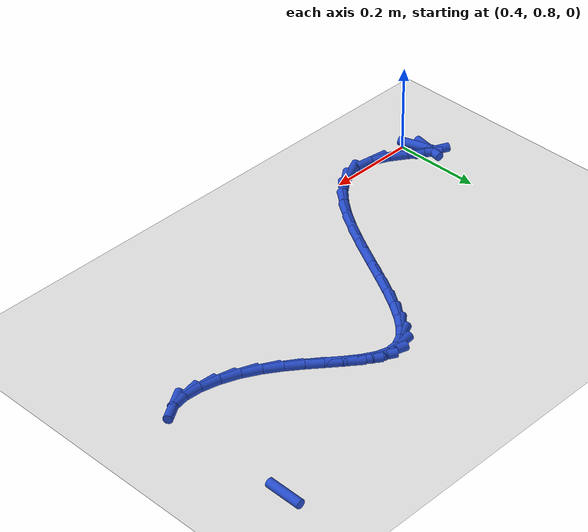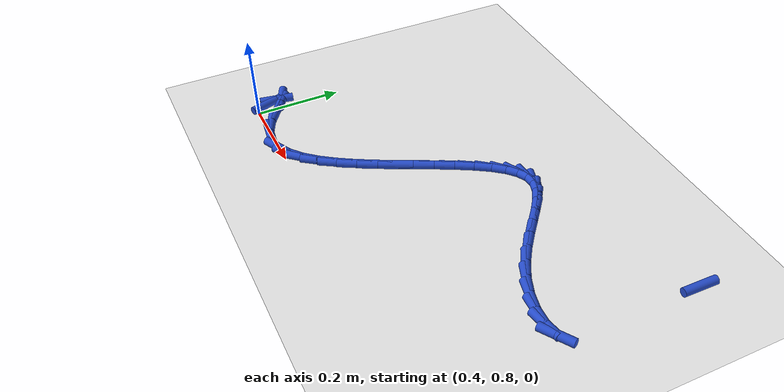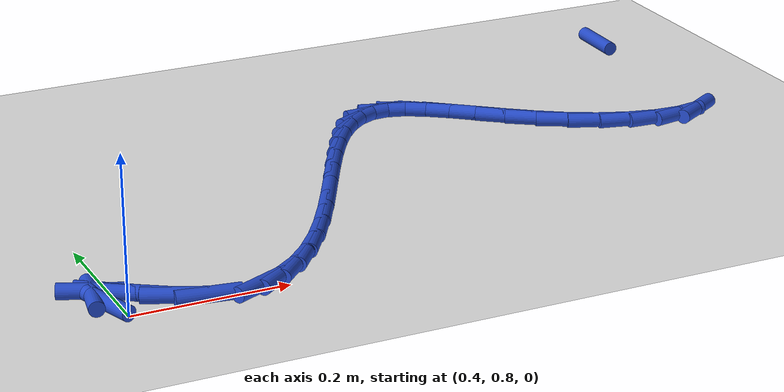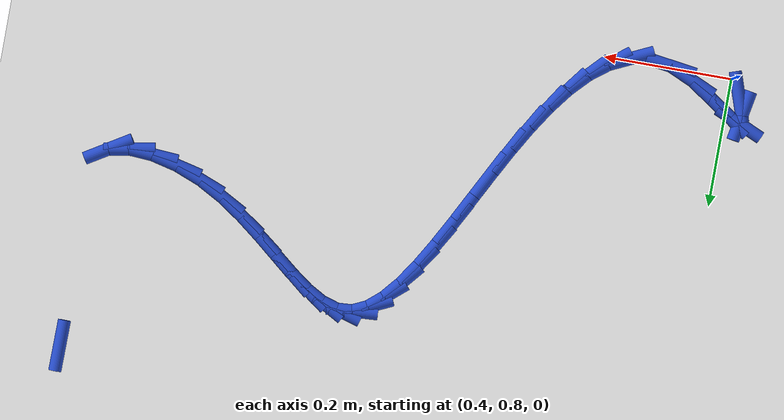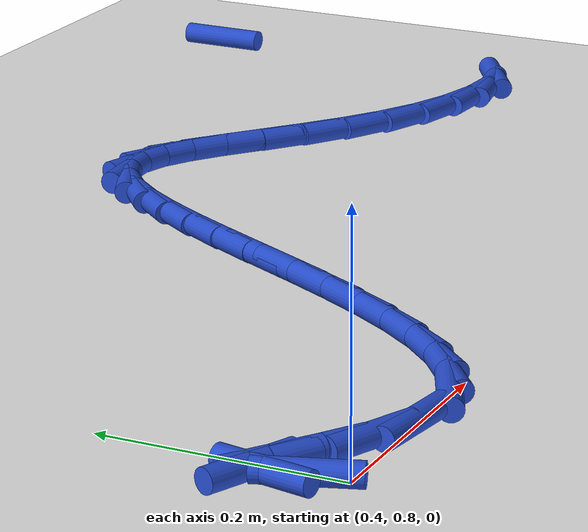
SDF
<sdf version="1.6">
 <world name="default">
  <model name="ground_plane">
   <static>1</static>
   <link name="link">
    <collision name="collision">
     <geometry><plane><normal>0 0 1</normal><size>100 100</size></plane></geometry>
     <surface><friction><ode><mu>100</mu><mu2>50</mu2></ode></friction></surface>
    </collision>
    <visual name="visual">
     <cast_shadows>0</cast_shadows>
     <geometry><plane><normal>0 0 1</normal><size>100 100</size></plane></geometry>
     <material>
      <script><uri>file://media/materials/scripts/gazebo.material</uri><name>Gazebo/WhiteGlow</name></script>
     </material>
    </visual>
   </link>
  </model>
  <model name="line">
   <link name="link_27">
    <pose>0.3840213402727948 0.8250343965628721 0.01 0 1.57 -1.2497416400634016</pose>
    <collision name="collision">
     <geometry><cylinder><radius>0.01</radius><length>0.08</length></cylinder></geometry>
    </collision>
    <visual name="visual">
     <material>
      <script><name>Gazebo/Blue</name><uri>file://media/materials/scripts/gazebo.material</uri></script>
     </material>
     <geometry><cylinder><radius>0.01</radius><length>0.08</length></cylinder></geometry>
    </visual>
   </link>
   <link name="link_28">
    <pose>0.37465007650285614 0.8532135358983607 0.01 0 1.57 1.3891757259824857</pose>
    <collision name="collision">
     <geometry><cylinder><radius>0.01</radius><length>0.08</length></cylinder></geometry>
    </collision>
    <visual name="visual">
     <material>
      <script><name>Gazebo/Blue</name><uri>file://media/materials/scripts/gazebo.material</uri></script>
     </material>
     <geometry><cylinder><radius>0.01</radius><length>0.08</length></cylinder></geometry>
    </visual>
   </link>
   <link name="link_29">
    <pose>0.37684960747522167 0.8651906629637433 0.01 0 1.57 -0.41789258580121025</pose>
    <collision name="collision">
     <geometry><cylinder><radius>0.01</radius><length>0.08</length></cylinder></geometry>
    </collision>
    <visual name="visual">
     <material>
      <script><name>Gazebo/Blue</name><uri>file://media/materials/scripts/gazebo.material</uri></script>
     </material>
     <geometry><cylinder><radius>0.01</radius><length>0.08</length></cylinder></geometry>
    </visual>
   </link>
   <link name="link_30">
    <pose>0.39445333956255335 0.8573737745000473 0.01 0 1.57 -0.6175390298586856</pose>
    <collision name="collision">
     <geometry><cylinder><radius>0.01</radius><length>0.08</length></cylinder></geometry>
    </collision>
    <visual name="visual">
     <material>
      <script><name>Gazebo/Blue</name><uri>file://media/materials/scripts/gazebo.material</uri></script>
     </material>
     <geometry><cylinder><radius>0.01</radius><length>0.08</length></cylinder></geometry>
    </visual>
   </link>
   <link name="link_31">
    <pose>0.4243391507244915 0.8361488632851112 0.01 0 1.57 -0.5842321517447974</pose>
    <collision name="collision">
     <geometry><cylinder><radius>0.01</radius><length>0.08</length></cylinder></geometry>
    </collision>
    <visual name="visual">
     <material>
      <script><name>Gazebo/Blue</name><uri>file://media/materials/scripts/gazebo.material</uri></script>
     </material>
     <geometry><cylinder><radius>0.01</radius><length>0.08</length></cylinder></geometry>
    </visual>
   </link>
   <link name="link_32">
    <pose>0.46024445062688446 0.8124070550397324 0.01 0 1.57 -0.41734542980720046</pose>
    <collision name="collision">
     <geometry><cylinder><radius>0.01</radius><length>0.08</length></cylinder></geometry>
    </collision>
    <visual name="visual">
     <material>
      <script><name>Gazebo/Blue</name><uri>file://media/materials/scripts/gazebo.material</uri></script>
     </material>
     <geometry><cylinder><radius>0.01</radius><length>0.08</length></cylinder></geometry>
    </visual>
   </link>
   <link name="link_33">
    <pose>0.49621227974537485 0.7964591949227914 0.01 0 1.57 -0.14137503615323826</pose>
    <collision name="collision">
     <geometry><cylinder><radius>0.01</radius><length>0.08</length></cylinder></geometry>
    </collision>
    <visual name="visual">
     <material>
      <script><name>Gazebo/Blue</name><uri>file://media/materials/scripts/gazebo.material</uri></script>
     </material>
     <geometry><cylinder><radius>0.01</radius><length>0.08</length></cylinder></geometry>
    </visual>
   </link>
   <link name="link_35">
    <pose>0.5617412339717663 0.7968501234003461 0.01 0 1.57 0.43819260171617636</pose>
    <collision name="collision">
     <geometry><cylinder><radius>0.01</radius><length>0.08</length></cylinder></geometry>
    </collision>
    <visual name="visual">
     <material>
      <script><name>Gazebo/Blue</name><uri>file://media/materials/scripts/gazebo.material</uri></script>
     </material>
     <geometry><cylinder><radius>0.01</radius><length>0.08</length></cylinder></geometry>
    </visual>
   </link>
   <link name="link_36">
    <pose>0.59162326400468 0.8108520783594951 0.01 0 1.57 0.6536071172656929</pose>
    <collision name="collision">
     <geometry><cylinder><radius>0.01</radius><length>0.08</length></cylinder></geometry>
    </collision>
    <visual name="visual">
     <material>
      <script><name>Gazebo/Blue</name><uri>file://media/materials/scripts/gazebo.material</uri></script>
     </material>
     <geometry><cylinder><radius>0.01</radius><length>0.08</length></cylinder></geometry>
    </visual>
   </link>
   <link name="link_37">
    <pose>0.6198238396563265 0.8324512315498346 0.01 0 1.57 0.8090131655517493</pose>
    <collision name="collision">
     <geometry><cylinder><radius>0.01</radius><length>0.08</length></cylinder></geometry>
    </collision>
    <visual name="visual">
     <material>
      <script><name>Gazebo/Blue</name><uri>file://media/materials/scripts/gazebo.material</uri></script>
     </material>
     <geometry><cylinder><radius>0.01</radius><length>0.08</length></cylinder></geometry>
    </visual>
   </link>
   <link name="link_38">
    <pose>0.6465230936808962 0.8604422362845714 0.01 0 1.57 0.9178160358527657</pose>
    <collision name="collision">
     <geometry><cylinder><radius>0.01</radius><length>0.08</length></cylinder></geometry>
    </collision>
    <visual name="visual">
     <material>
      <script><name>Gazebo/Blue</name><uri>file://media/materials/scripts/gazebo.material</uri></script>
     </material>
     <geometry><cylinder><radius>0.01</radius><length>0.08</length></cylinder></geometry>
    </visual>
   </link>
   <link name="link_39">
    <pose>0.6719011588325806 0.8936197458769135 0.01 0 1.57 0.992835950291742</pose>
    <collision name="collision">
     <geometry><cylinder><radius>0.01</radius><length>0.08</length></cylinder></geometry>
    </collision>
    <visual name="visual">
     <material>
      <script><name>Gazebo/Blue</name><uri>file://media/materials/scripts/gazebo.material</uri></script>
     </material>
     <geometry><cylinder><radius>0.01</radius><length>0.08</length></cylinder></geometry>
    </visual>
   </link>
   <link name="link_40">
    <pose>0.69613816786557 0.9307784136400675 0.01 0 1.57 1.0430774463765724</pose>
    <collision name="collision">
     <geometry><cylinder><radius>0.01</radius><length>0.08</length></cylinder></geometry>
    </collision>
    <visual name="visual">
     <material>
      <script><name>Gazebo/Blue</name><uri>file://media/materials/scripts/gazebo.material</uri></script>
     </material>
     <geometry><cylinder><radius>0.01</radius><length>0.08</length></cylinder></geometry>
    </visual>
   </link>
   <link name="link_41">
    <pose>0.7194142535340554 0.9707128928872408 0.01 0 1.57 1.074123053864128</pose>
    <collision name="collision">
     <geometry><cylinder><radius>0.01</radius><length>0.08</length></cylinder></geometry>
    </collision>
    <visual name="visual">
     <material>
      <script><name>Gazebo/Blue</name><uri>file://media/materials/scripts/gazebo.material</uri></script>
     </material>
     <geometry><cylinder><radius>0.01</radius><length>0.08</length></cylinder></geometry>
    </visual>
   </link>
   <link name="link_42">
    <pose>0.7419095485922274 1.0122178369316404 0.01 0 1.57 1.0889823387279105</pose>
    <collision name="collision">
     <geometry><cylinder><radius>0.01</radius><length>0.08</length></cylinder></geometry>
    </collision>
    <visual name="visual">
     <material>
      <script><name>Gazebo/Blue</name><uri>file://media/materials/scripts/gazebo.material</uri></script>
     </material>
     <geometry><cylinder><radius>0.01</radius><length>0.08</length></cylinder></geometry>
    </visual>
   </link>
   <link name="link_43">
    <pose>0.7638041857942766 1.0540878990864733 0.01 0 1.57 1.088621710138873</pose>
    <collision name="collision">
     <geometry><cylinder><radius>0.01</radius><length>0.08</length></cylinder></geometry>
    </collision>
    <visual name="visual">
     <material>
      <script><name>Gazebo/Blue</name><uri>file://media/materials/scripts/gazebo.material</uri></script>
     </material>
     <geometry><cylinder><radius>0.01</radius><length>0.08</length></cylinder></geometry>
    </visual>
   </link>
   <link name="link_44">
    <pose>0.7852782978943937 1.095117732664947 0.01 0 1.57 1.072051214306616</pose>
    <collision name="collision">
     <geometry><cylinder><radius>0.01</radius><length>0.08</length></cylinder></geometry>
    </collision>
    <visual name="visual">
     <material>
      <script><name>Gazebo/Blue</name><uri>file://media/materials/scripts/gazebo.material</uri></script>
     </material>
     <geometry><cylinder><radius>0.01</radius><length>0.08</length></cylinder></geometry>
    </visual>
   </link>
   <link name="link_45">
    <pose>0.8065120176467699 1.1341019909802688 0.01 0 1.57 1.0358795764966506</pose>
    <collision name="collision">
     <geometry><cylinder><radius>0.01</radius><length>0.08</length></cylinder></geometry>
    </collision>
    <visual name="visual">
     <material>
      <script><name>Gazebo/Blue</name><uri>file://media/materials/scripts/gazebo.material</uri></script>
     </material>
     <geometry><cylinder><radius>0.01</radius><length>0.08</length></cylinder></geometry>
    </visual>
   </link>
   <link name="link_46">
    <pose>0.8276854778055959 1.1698353273456457 0.01 0 1.57 0.973074888336738</pose>
    <collision name="collision">
     <geometry><cylinder><radius>0.01</radius><length>0.08</length></cylinder></geometry>
    </collision>
    <visual name="visual">
     <material>
      <script><name>Gazebo/Blue</name><uri>file://media/materials/scripts/gazebo.material</uri></script>
     </material>
     <geometry><cylinder><radius>0.01</radius><length>0.08</length></cylinder></geometry>
    </visual>
   </link>
   <link name="link_47">
    <pose>0.8489788111250622 1.2011123950742846 0.01 0 1.57 0.8703913042534615</pose>
    <collision name="collision">
     <geometry><cylinder><radius>0.01</radius><length>0.08</length></cylinder></geometry>
    </collision>
    <visual name="visual">
     <material>
      <script><name>Gazebo/Blue</name><uri>file://media/materials/scripts/gazebo.material</uri></script>
     </material>
     <geometry><cylinder><radius>0.01</radius><length>0.08</length></cylinder></geometry>
    </visual>
   </link>
   <link name="link_48">
    <pose>0.8705721503593595 1.226727847479393 0.01 0 1.57 0.7041266363398381</pose>
    <collision name="collision">
     <geometry><cylinder><radius>0.01</radius><length>0.08</length></cylinder></geometry>
    </collision>
    <visual name="visual">
     <material>
      <script><name>Gazebo/Blue</name><uri>file://media/materials/scripts/gazebo.material</uri></script>
     </material>
     <geometry><cylinder><radius>0.01</radius><length>0.08</length></cylinder></geometry>
    </visual>
   </link>
   <link name="link_49">
    <pose>0.8926456282626789 1.245476337874178 0.01 0 1.57 0.439048094520214</pose>
    <collision name="collision">
     <geometry><cylinder><radius>0.01</radius><length>0.08</length></cylinder></geometry>
    </collision>
    <visual name="visual">
     <material>
      <script><name>Gazebo/Blue</name><uri>file://media/materials/scripts/gazebo.material</uri></script>
     </material>
     <geometry><cylinder><radius>0.01</radius><length>0.08</length></cylinder></geometry>
    </visual>
   </link>
   <link name="link_50">
    <pose>0.9153793775892112 1.256152519571847 0.01 0 1.57 0.06250082210837357</pose>
    <collision name="collision">
     <geometry><cylinder><radius>0.01</radius><length>0.08</length></cylinder></geometry>
    </collision>
    <visual name="visual">
     <material>
      <script><name>Gazebo/Blue</name><uri>file://media/materials/scripts/gazebo.material</uri></script>
     </material>
     <geometry><cylinder><radius>0.01</radius><length>0.08</length></cylinder></geometry>
    </visual>
   </link>
   <link name="link_51">
    <pose>0.938954292927347 1.2576278927714963 0.01 0 1.57 -0.2907933008298742</pose>
    <collision name="collision">
     <geometry><cylinder><radius>0.01</radius><length>0.08</length></cylinder></geometry>
    </collision>
    <visual name="visual">
     <material>
      <script><name>Gazebo/Blue</name><uri>file://media/materials/scripts/gazebo.material</uri></script>
     </material>
     <geometry><cylinder><radius>0.01</radius><length>0.08</length></cylinder></geometry>
    </visual>
   </link>
   <link name="link_52">
    <pose>0.9635660224999892 1.2502621697616816 0.01 0 1.57 -0.5110485343310961</pose>
    <collision name="collision">
     <geometry><cylinder><radius>0.01</radius><length>0.08</length></cylinder></geometry>
    </collision>
    <visual name="visual">
     <material>
      <script><name>Gazebo/Blue</name><uri>file://media/materials/scripts/gazebo.material</uri></script>
     </material>
     <geometry><cylinder><radius>0.01</radius><length>0.08</length></cylinder></geometry>
    </visual>
   </link>
   <link name="link_53">
    <pose>0.9894235765848806 1.2357629050552201 0.01 0 1.57 -0.6290993567731736</pose>
    <collision name="collision">
     <geometry><cylinder><radius>0.01</radius><length>0.08</length></cylinder></geometry>
    </collision>
    <visual name="visual">
     <material>
      <script><name>Gazebo/Blue</name><uri>file://media/materials/scripts/gazebo.material</uri></script>
     </material>
     <geometry><cylinder><radius>0.01</radius><length>0.08</length></cylinder></geometry>
    </visual>
   </link>
   <link name="link_54">
    <pose>1.0167364481214298 1.2158863396717536 0.01 0 1.57 -0.6813441813651456</pose>
    <collision name="collision">
     <geometry><cylinder><radius>0.01</radius><length>0.08</length></cylinder></geometry>
    </collision>
    <visual name="visual">
     <material>
      <script><name>Gazebo/Blue</name><uri>file://media/materials/scripts/gazebo.material</uri></script>
     </material>
     <geometry><cylinder><radius>0.01</radius><length>0.08</length></cylinder></geometry>
    </visual>
   </link>
   <link name="link_55">
    <pose>1.0457141300490471 1.1923887146309264 0.01 0 1.57 -0.6880532109664231</pose>
    <collision name="collision">
     <geometry><cylinder><radius>0.01</radius><length>0.08</length></cylinder></geometry>
    </collision>
    <visual name="visual">
     <material>
      <script><name>Gazebo/Blue</name><uri>file://media/materials/scripts/gazebo.material</uri></script>
     </material>
     <geometry><cylinder><radius>0.01</radius><length>0.08</length></cylinder></geometry>
    </visual>
   </link>
   <link name="link_56">
    <pose>1.0765661153071422 1.1670262709523809 0.01 0 1.57 -0.6582809554437344</pose>
    <collision name="collision">
     <geometry><cylinder><radius>0.01</radius><length>0.08</length></cylinder></geometry>
    </collision>
    <visual name="visual">
     <material>
      <script><name>Gazebo/Blue</name><uri>file://media/materials/scripts/gazebo.material</uri></script>
     </material>
     <geometry><cylinder><radius>0.01</radius><length>0.08</length></cylinder></geometry>
    </visual>
   </link>
   <link name="link_57">
    <pose>1.1095018968351245 1.1415552496557602 0.01 0 1.57 -0.5946020400388812</pose>
    <collision name="collision">
     <geometry><cylinder><radius>0.01</radius><length>0.08</length></cylinder></geometry>
    </collision>
    <visual name="visual">
     <material>
      <script><name>Gazebo/Blue</name><uri>file://media/materials/scripts/gazebo.material</uri></script>
     </material>
     <geometry><cylinder><radius>0.01</radius><length>0.08</length></cylinder></geometry>
    </visual>
   </link>
   <link name="link_58">
    <pose>1.1447309675724031 1.117731891760707 0.01 0 1.57 -0.49605298139443954</pose>
    <collision name="collision">
     <geometry><cylinder><radius>0.01</radius><length>0.08</length></cylinder></geometry>
    </collision>
    <visual name="visual">
     <material>
      <script><name>Gazebo/Blue</name><uri>file://media/materials/scripts/gazebo.material</uri></script>
     </material>
     <geometry><cylinder><radius>0.01</radius><length>0.08</length></cylinder></geometry>
    </visual>
   </link>
   <link name="link_59">
    <pose>1.182462104114913 1.0973122346371218 0.01 0 1.57 -0.37008091538841814</pose>
    <collision name="collision">
     <geometry><cylinder><radius>0.01</radius><length>0.08</length></cylinder></geometry>
    </collision>
    <visual name="visual">
     <material>
      <script><name>Gazebo/Blue</name><uri>file://media/materials/scripts/gazebo.material</uri></script>
     </material>
     <geometry><cylinder><radius>0.01</radius><length>0.08</length></cylinder></geometry>
    </visual>
   </link>
   <link name="link_60">
    <pose>1.2222647351839147 1.0818705550399248 0.01 0 1.57 -0.23302321920221766</pose>
    <collision name="collision">
     <geometry><cylinder><radius>0.01</radius><length>0.08</length></cylinder></geometry>
    </collision>
    <visual name="visual">
     <material>
      <script><name>Gazebo/Blue</name><uri>file://media/materials/scripts/gazebo.material</uri></script>
     </material>
     <geometry><cylinder><radius>0.01</radius><length>0.08</length></cylinder></geometry>
    </visual>
   </link>
   <link name="link_61">
    <pose>1.2618936461394727 1.0724652436057558 0.01 0 1.57 -0.06500561413143688</pose>
    <collision name="collision">
     <geometry><cylinder><radius>0.01</radius><length>0.08</length></cylinder></geometry>
    </collision>
    <visual name="visual">
     <material>
      <script><name>Gazebo/Blue</name><uri>file://media/materials/scripts/gazebo.material</uri></script>
     </material>
     <geometry><cylinder><radius>0.01</radius><length>0.08</length></cylinder></geometry>
    </visual>
   </link>
   <link name="link_62">
    <pose>1.2987838699629737 1.0700637883636246 0.01 0 1.57 0.17454288929553524</pose>
    <collision name="collision">
     <geometry><cylinder><radius>0.01</radius><length>0.08</length></cylinder></geometry>
    </collision>
    <visual name="visual">
     <material>
      <script><name>Gazebo/Blue</name><uri>file://media/materials/scripts/gazebo.material</uri></script>
     </material>
     <geometry><cylinder><radius>0.01</radius><length>0.08</length></cylinder></geometry>
    </visual>
   </link>
   <link name="link_63">
    <pose>1.3303704396358056 1.0756336773425434 0.01 0 1.57 0.5484654266116746</pose>
    <collision name="collision">
     <geometry><cylinder><radius>0.01</radius><length>0.08</length></cylinder></geometry>
    </collision>
    <visual name="visual">
     <material>
      <script><name>Gazebo/Blue</name><uri>file://media/materials/scripts/gazebo.material</uri></script>
     </material>
     <geometry><cylinder><radius>0.01</radius><length>0.08</length></cylinder></geometry>
    </visual>
   </link>
   <link name="link_72">
    <pose>1.3517056327778103 1.388457103561163 0.01 0 1.57 1.5582900425186175</pose>
    <collision name="collision">
     <geometry><cylinder><radius>0.01</radius><length>0.08</length></cylinder></geometry>
    </collision>
    <visual name="visual">
     <material>
      <script><name>Gazebo/Blue</name><uri>file://media/materials/scripts/gazebo.material</uri></script>
     </material>
     <geometry><cylinder><radius>0.01</radius><length>0.08</length></cylinder></geometry>
    </visual>
   </link>
  </model>
 </world>
</sdf>
